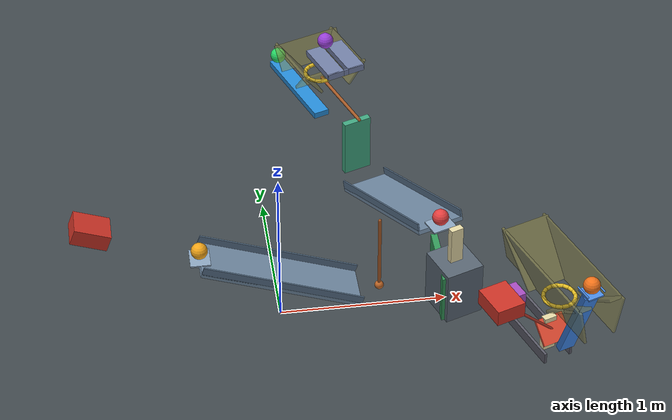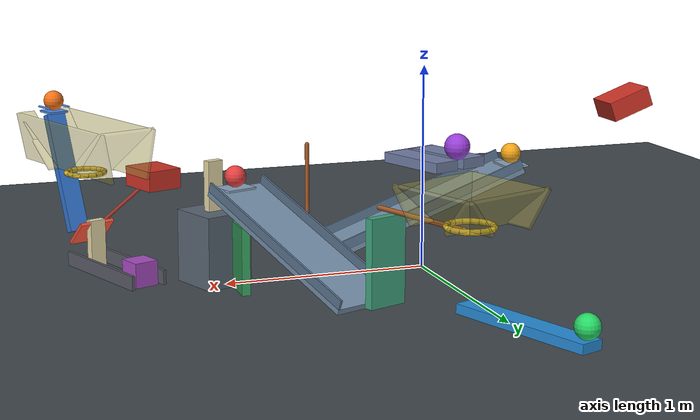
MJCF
<mujoco model="spring_started_chain">
  <compiler angle="degree" autolimits="true" inertiafromgeom="true"/>
  <option timestep="0.002" gravity="0 0 -9.81" integrator="implicitfast" solver="Newton" iterations="100" cone="elliptic" impratio="3" o_solref="0.006 0.6901" o_solimp="0.95 0.99 0.001" o_friction="0.68 0.68 0.005 0.002 0.002">
    <flag override="enable"/>
  </option>
  <size njmax="3000" nconmax="1000"/>
  <visual>
    <global azimuth="135" elevation="-25"/>
    <map znear="0.01" zfar="30"/>
  </visual>

  <!-- Complete scene; the full 20-second cascade has not been simulation-validated. -->
  <!-- Explicit powered assistance supplements cart1's spring. Assistance amplifies contact-induced displacement. -->
  <!-- Contact damping ratio 0.6901 approximates restitution 0.05; MuJoCo has no direct restitution coefficient. -->
  <!-- Sliding friction is 0.68. Torsional and rolling resistance help fallen balls settle. -->
  <!-- All initial generalized velocities are zero. Unspecified keyframe qpos uses the model's initial poses. -->

  <worldbody>
    <light name="key_light" pos="-2 -3 5" dir="0.3 0.4 -1" diffuse="0.8 0.8 0.8"/>
    <light name="fill_light" pos="3 3 4" dir="-0.3 -0.3 -1" diffuse="0.5 0.5 0.5"/>
    <camera name="overview" pos="5 -6 4.5" xyaxes="0.768 0.640 0 -0.288 0.346 0.893"/>
    <geom name="floor" type="plane" pos="0 0 0" size="5 5 0.1" condim="6" friction="0.68 0.005 0.002" rgba="0.25 0.28 0.30 1"/>

    <!-- The spring compression is springref minus initial q: 0.20 m. -->
    <!-- Cart1's front face first reaches ball1 after 0.50 m of axial travel. -->
    <body name="cart1" pos="-1.090043 0 0.767754" quat="0.984807753 0 0.173648178 0">
      <joint name="cart1_slide" type="slide" axis="1 0 0" range="0 0.515" damping="0.20" stiffness="18" springref="0.20" solreflimit="0.006 1" solimplimit="0.99 0.999 0.001"/>
      <geom name="cart1_box" type="box" size="0.11 0.09 0.05" mass="0.50" condim="6" friction="0.68 0.005 0.002" rgba="0.80 0.20 0.15 1"/>
    </body>

    <body name="ball1" pos="-0.469846 0 0.542020">
      <freejoint name="ball1_free"/>
      <geom name="ball1_sphere" type="sphere" size="0.05" mass="0.20" condim="6" friction="0.68 0.005 0.002" rgba="0.95 0.65 0.10 1"/>
    </body>

    <!-- Ramp1's surface is 1.00 by 0.30 m, inclined 20 degrees, with its low end at z=0.15. -->
    <!-- A horizontal high-end pad prevents ball1 from leaving before cart1 arrives. -->
    <body name="ramp1" pos="0 0 0.321010" quat="0.984807753 0 0.173648178 0">
      <geom name="ramp1_surface" type="box" pos="0 0 -0.0125" size="0.50 0.15 0.0125" condim="6" friction="0.68 0.005 0.002" rgba="0.45 0.55 0.65 1"/>
      <geom name="ramp1_start_pad" type="box" pos="-0.498290 0 -0.004698" quat="0.984807753 0 -0.173648178 0" size="0.06 0.075 0.005" condim="6" friction="0.68 0.005 0.002" rgba="0.55 0.65 0.75 1"/>
      <geom name="ramp1_rail_left" type="box" pos="0 0.145 0.02" size="0.50 0.005 0.025" condim="6" friction="0.68 0.005 0.002" rgba="0.35 0.45 0.55 1"/>
      <geom name="ramp1_rail_right" type="box" pos="0 -0.145 0.02" size="0.50 0.005 0.025" condim="6" friction="0.68 0.005 0.002" rgba="0.35 0.45 0.55 1"/>
    </body>

    <body name="pendulum1" pos="0.594846 0 0.65">
      <joint name="pendulum1_hinge" type="hinge" axis="0 -1 0" range="0 40" damping="0.04" solreflimit="0.006 1" solimplimit="0.99 0.999 0.001"/>
      <geom name="pendulum1_rod" type="capsule" fromto="0 0 0 0 0 -0.50" size="0.01" mass="0.32" condim="6" friction="0.68 0.005 0.002" rgba="0.65 0.35 0.15 1"/>
      <geom name="pendulum1_bob" type="sphere" pos="0 0 -0.50" size="0.027" mass="0.03" condim="6" friction="0.68 0.005 0.002" rgba="0.75 0.40 0.15 1"/>
    </body>

    <body name="door1" pos="0.961240 -0.20 0.16">
      <joint name="door1_hinge" type="hinge" axis="0 0 -1" range="0 70" damping="0.04" solreflimit="0.006 1" solimplimit="0.99 0.999 0.001"/>
      <geom name="door1_panel" type="box" pos="0 0.21 0" size="0.02 0.21 0.16" mass="0.45" condim="6" friction="0.68 0.005 0.002" rgba="0.20 0.60 0.35 1"/>
    </body>

    <body name="block1" pos="1.383615 -0.132467 0.06" quat="0.819152044 0 0 -0.573576436">
      <freejoint name="block1_free"/>
      <geom name="block1_cube" type="box" size="0.06 0.06 0.06" mass="0.35" condim="6" friction="0.68 0.005 0.002" rgba="0.65 0.30 0.75 1"/>
    </body>

    <body name="block1_guide" pos="1.383615 -0.132467 0" quat="0.819152044 0 0 -0.573576436">
      <geom name="block1_guide_left" type="box" pos="0.22 0.086 0.035" size="0.30 0.008 0.035" condim="6" friction="0.68 0.005 0.002" rgba="0.35 0.35 0.40 1"/>
      <geom name="block1_guide_right" type="box" pos="0.22 -0.086 0.035" size="0.30 0.008 0.035" condim="6" friction="0.68 0.005 0.002" rgba="0.35 0.35 0.40 1"/>
    </body>

    <!-- Initial block-to-domino face clearance is 0.32 m along the guide. -->
    <body name="domino1" pos="1.520423 -0.508344 0.12" quat="0.819152044 0 0 -0.573576436">
      <freejoint name="domino1_free"/>
      <geom name="domino1_box" type="box" size="0.02 0.04 0.12" mass="0.25" condim="6" friction="0.68 0.005 0.002" rgba="0.90 0.85 0.65 1"/>
    </body>

    <!-- Lever1 is center-hinged and initially inclined, placing its left end 0.18 m beyond domino1. -->
    <!-- Beam and cup together have mass 0.50 kg. -->
    <body name="lever1" pos="1.617080 -0.773906 0.431908" quat="0.671010072 -0.328989928 -0.469846310 -0.469846310">
      <joint name="lever1_hinge" type="hinge" axis="0 -1 0" range="0 45" damping="0.04" solreflimit="0.006 1" solimplimit="0.99 0.999 0.001"/>
      <geom name="lever1_beam" type="box" size="0.30 0.05 0.02" mass="0.479" condim="6" friction="0.68 0.005 0.002" rgba="0.20 0.45 0.80 1"/>
      <geom name="lever1_cup_floor" type="box" pos="0.314095 0 0.005130" quat="0.819152044 0 0.573576436 0" size="0.055 0.05 0.005" mass="0.020" condim="6" friction="0.68 0.005 0.002" rgba="0.30 0.55 0.90 1"/>
      <geom name="lever1_cup_rail_left" type="capsule" fromto="0.320487 0.055 0.060666 0.354689 0.055 -0.033304" size="0.005" mass="0.0005" condim="6" friction="0.68 0.005 0.002" rgba="0.30 0.55 0.90 1"/>
      <geom name="lever1_cup_rail_right" type="capsule" fromto="0.320487 -0.055 0.060666 0.354689 -0.055 -0.033304" size="0.005" mass="0.0005" condim="6" friction="0.68 0.005 0.002" rgba="0.30 0.55 0.90 1"/>
    </body>

    <body name="ball2" pos="1.652173 -0.870324 0.783816">
      <freejoint name="ball2_free"/>
      <geom name="ball2_sphere" type="sphere" size="0.05" mass="0.20" condim="6" friction="0.68 0.005 0.002" rgba="0.95 0.45 0.10 1"/>
    </body>

    <!-- Ring1 is horizontal, with 0.16 m inscribed clear diameter, 0.32 m below ball2's initial center. -->
    <!-- Its primitive guide includes a slot through which the lever can move. -->
    <body name="ring1" pos="1.549567 -0.588416 0.463816" quat="0.573576436 0 0 0.819152044">
      <geom name="ring1_segment_00" type="capsule" fromto="0.093802 0 0 0.086664 0.035897 0" size="0.012" condim="6" friction="0.68 0.005 0.002" rgba="0.90 0.75 0.15 1"/>
      <geom name="ring1_segment_01" type="capsule" fromto="0.086664 0.035897 0 0.066330 0.066330 0" size="0.012" condim="6" friction="0.68 0.005 0.002" rgba="0.90 0.75 0.15 1"/>
      <geom name="ring1_segment_02" type="capsule" fromto="0.066330 0.066330 0 0.035897 0.086664 0" size="0.012" condim="6" friction="0.68 0.005 0.002" rgba="0.90 0.75 0.15 1"/>
      <geom name="ring1_segment_03" type="capsule" fromto="0.035897 0.086664 0 0 0.093802 0" size="0.012" condim="6" friction="0.68 0.005 0.002" rgba="0.90 0.75 0.15 1"/>
      <geom name="ring1_segment_04" type="capsule" fromto="0 0.093802 0 -0.035897 0.086664 0" size="0.012" condim="6" friction="0.68 0.005 0.002" rgba="0.90 0.75 0.15 1"/>
      <geom name="ring1_segment_05" type="capsule" fromto="-0.035897 0.086664 0 -0.066330 0.066330 0" size="0.012" condim="6" friction="0.68 0.005 0.002" rgba="0.90 0.75 0.15 1"/>
      <geom name="ring1_segment_06" type="capsule" fromto="-0.066330 0.066330 0 -0.086664 0.035897 0" size="0.012" condim="6" friction="0.68 0.005 0.002" rgba="0.90 0.75 0.15 1"/>
      <geom name="ring1_segment_07" type="capsule" fromto="-0.086664 0.035897 0 -0.093802 0 0" size="0.012" condim="6" friction="0.68 0.005 0.002" rgba="0.90 0.75 0.15 1"/>
      <geom name="ring1_segment_08" type="capsule" fromto="-0.093802 0 0 -0.086664 -0.035897 0" size="0.012" condim="6" friction="0.68 0.005 0.002" rgba="0.90 0.75 0.15 1"/>
      <geom name="ring1_segment_09" type="capsule" fromto="-0.086664 -0.035897 0 -0.066330 -0.066330 0" size="0.012" condim="6" friction="0.68 0.005 0.002" rgba="0.90 0.75 0.15 1"/>
      <geom name="ring1_segment_10" type="capsule" fromto="-0.066330 -0.066330 0 -0.035897 -0.086664 0" size="0.012" condim="6" friction="0.68 0.005 0.002" rgba="0.90 0.75 0.15 1"/>
      <geom name="ring1_segment_11" type="capsule" fromto="-0.035897 -0.086664 0 0 -0.093802 0" size="0.012" condim="6" friction="0.68 0.005 0.002" rgba="0.90 0.75 0.15 1"/>
      <geom name="ring1_segment_12" type="capsule" fromto="0 -0.093802 0 0.035897 -0.086664 0" size="0.012" condim="6" friction="0.68 0.005 0.002" rgba="0.90 0.75 0.15 1"/>
      <geom name="ring1_segment_13" type="capsule" fromto="0.035897 -0.086664 0 0.066330 -0.066330 0" size="0.012" condim="6" friction="0.68 0.005 0.002" rgba="0.90 0.75 0.15 1"/>
      <geom name="ring1_segment_14" type="capsule" fromto="0.066330 -0.066330 0 0.086664 -0.035897 0" size="0.012" condim="6" friction="0.68 0.005 0.002" rgba="0.90 0.75 0.15 1"/>
      <geom name="ring1_segment_15" type="capsule" fromto="0.086664 -0.035897 0 0.093802 0 0" size="0.012" condim="6" friction="0.68 0.005 0.002" rgba="0.90 0.75 0.15 1"/>
      <geom name="ring1_guide_front" type="box" pos="0.2475 0 0.138" euler="0 52.25 0" size="0.008 0.15 0.19282" condim="6" friction="0.68 0.005 0.002" rgba="0.65 0.60 0.25 0.45"/>
      <geom name="ring1_guide_back_lower" type="box" pos="-0.1725 0 0.08" euler="0 -52.25 0" size="0.008 0.15 0.09802" condim="6" friction="0.68 0.005 0.002" rgba="0.65 0.60 0.25 0.45"/>
      <geom name="ring1_guide_back_upper_left" type="box" pos="-0.325 0.10 0.198" euler="0 -52.25 0" size="0.008 0.04 0.09482" condim="6" friction="0.68 0.005 0.002" rgba="0.65 0.60 0.25 0.45"/>
      <geom name="ring1_guide_back_upper_right" type="box" pos="-0.325 -0.10 0.198" euler="0 -52.25 0" size="0.008 0.04 0.09482" condim="6" friction="0.68 0.005 0.002" rgba="0.65 0.60 0.25 0.45"/>
      <geom name="ring1_guide_left" type="box" pos="0 0.1175 0.138" euler="-10.8 0 0" size="0.42 0.007 0.12012" condim="6" friction="0.68 0.005 0.002" rgba="0.65 0.60 0.25 0.45"/>
      <geom name="ring1_guide_right" type="box" pos="0 -0.1175 0.138" euler="10.8 0 0" size="0.42 0.007 0.12012" condim="6" friction="0.68 0.005 0.002" rgba="0.65 0.60 0.25 0.45"/>
    </body>

    <!-- Cart2's rigid inclined paddle converts the falling ball's impact into axial motion. -->
    <!-- Main cart, coupling arm, and paddle together have mass 0.50 kg. -->
    <!-- Nominal ball-center height at paddle contact is ring1 height minus 0.25 m. -->
    <body name="cart2" pos="1.219434 -0.558526 0.425" quat="0.573576436 0 0 0.819152044">
      <joint name="cart2_slide" type="slide" axis="1 0 0" range="0 0.405" damping="0.20" solreflimit="0.006 1" solimplimit="0.99 0.999 0.001"/>
      <geom name="cart2_box" type="box" size="0.11 0.09 0.05" mass="0.470" condim="6" friction="0.68 0.005 0.002" rgba="0.80 0.20 0.15 1"/>
      <geom name="cart2_coupling_arm" type="capsule" fromto="0 0 0 -0.10 -0.30 -0.252197" size="0.008" mass="0.015" condim="6" friction="0.68 0.005 0.002" rgba="0.65 0.20 0.15 1"/>
      <geom name="cart2_catch_paddle" type="box" pos="-0.10 -0.30 -0.252197" quat="0.923879533 0 -0.382683432 0" size="0.08 0.09 0.008" mass="0.015" condim="6" friction="0.68 0.005 0.002" rgba="0.90 0.30 0.20 1"/>
    </body>

    <body name="domino2_support" pos="1.038163 -0.060489 0.175" quat="0.573576436 0 0 0.819152044">
      <geom name="domino2_support_plinth" type="box" size="0.13 0.12 0.175" condim="6" friction="0.68 0.005 0.002" rgba="0.35 0.40 0.45 1"/>
    </body>

    <!-- Cart2 reaches domino2 after 0.40 m of travel. -->
    <body name="domino2" pos="1.038163 -0.060489 0.47" quat="0.573576436 0 0 0.819152044">
      <freejoint name="domino2_free"/>
      <geom name="domino2_box" type="box" size="0.02 0.04 0.12" mass="0.25" condim="6" friction="0.68 0.005 0.002" rgba="0.90 0.85 0.65 1"/>
    </body>

    <body name="ball3" pos="0.976600 0.108656 0.542020">
      <freejoint name="ball3_free"/>
      <geom name="ball3_sphere" type="sphere" size="0.05" mass="0.20" condim="6" friction="0.68 0.005 0.002" rgba="0.90 0.25 0.25 1"/>
    </body>

    <body name="ramp2" pos="0.815903 0.550167 0.321010" quat="0.564862521 -0.142244260 0.099600503 0.806707284">
      <geom name="ramp2_surface" type="box" pos="0 0 -0.0125" size="0.50 0.15 0.0125" condim="6" friction="0.68 0.005 0.002" rgba="0.45 0.55 0.65 1"/>
      <geom name="ramp2_start_pad" type="box" pos="-0.498290 0 -0.004698" quat="0.984807753 0 -0.173648178 0" size="0.06 0.075 0.005" condim="6" friction="0.68 0.005 0.002" rgba="0.55 0.65 0.75 1"/>
      <geom name="ramp2_rail_left" type="box" pos="0 0.145 0.02" size="0.50 0.005 0.025" condim="6" friction="0.68 0.005 0.002" rgba="0.35 0.45 0.55 1"/>
      <geom name="ramp2_rail_right" type="box" pos="0 -0.145 0.02" size="0.50 0.005 0.025" condim="6" friction="0.68 0.005 0.002" rgba="0.35 0.45 0.55 1"/>
    </body>

    <body name="flap1" pos="0.614164 1.104441 0.55" quat="0.573576436 0 0 0.819152044">
      <joint name="flap1_hinge" type="hinge" axis="0 -1 0" range="0 60" damping="0.04" solreflimit="0.006 1" solimplimit="0.99 0.999 0.001"/>
      <geom name="flap1_panel" type="box" pos="0 0 -0.19" size="0.02 0.09 0.19" mass="0.28" condim="6" friction="0.68 0.005 0.002" rgba="0.25 0.65 0.50 1"/>
    </body>

    <!-- Pendulum2 begins horizontal; its actuator exactly balances its initial gravitational torque. -->
    <body name="pendulum2" pos="0.627844 1.066854 0.577321" quat="0.573576436 0 0 0.819152044">
      <joint name="pendulum2_hinge" type="hinge" axis="0 -1 0" range="0 38" damping="0.04" solreflimit="0.006 1" solimplimit="0.99 0.999 0.001"/>
      <geom name="pendulum2_rod" type="capsule" fromto="0 0 0 0.50 0 0" size="0.0105" mass="0.32" condim="6" friction="0.68 0.005 0.002" rgba="0.65 0.35 0.15 1"/>
      <geom name="pendulum2_bob" type="sphere" pos="0.50 0 0" size="0.012" mass="0.03" condim="6" friction="0.68 0.005 0.002" rgba="0.75 0.40 0.15 1"/>
    </body>

    <!-- The shelf has a narrow central slot for pendulum2. Ball4 bridges its two support strips. -->
    <!-- Overall shelf dimensions remain 0.30 by 0.25 by 0.04 m, with its top at z=0.85. -->
    <body name="shelf1" pos="0.517030 1.371314 0.83" quat="0.573576436 0 0 0.819152044">
      <geom name="shelf1_left_strip" type="box" pos="0 0.07 0" size="0.15 0.055 0.02" condim="6" friction="0.68 0.005 0.002" rgba="0.45 0.50 0.65 1"/>
      <geom name="shelf1_right_strip" type="box" pos="0 -0.07 0" size="0.15 0.055 0.02" condim="6" friction="0.68 0.005 0.002" rgba="0.45 0.50 0.65 1"/>
      <geom name="shelf1_back_bridge" type="box" pos="-0.145 0 0" size="0.005 0.125 0.02" condim="6" friction="0.68 0.005 0.002" rgba="0.45 0.50 0.65 1"/>
    </body>

    <body name="ball4" pos="0.472567 1.493474 0.897697">
      <freejoint name="ball4_free"/>
      <geom name="ball4_sphere" type="sphere" size="0.05" mass="0.20" condim="6" friction="0.68 0.005 0.002" rgba="0.60 0.25 0.85 1"/>
    </body>

    <!-- Ring2 is 0.30 m below ball4's initial center. -->
    <body name="ring2" pos="0.445206 1.568649 0.597697" quat="0.573576436 0 0 0.819152044">
      <geom name="ring2_segment_00" type="capsule" fromto="0.093802 0 0 0.086664 0.035897 0" size="0.012" condim="6" friction="0.68 0.005 0.002" rgba="0.90 0.75 0.15 1"/>
      <geom name="ring2_segment_01" type="capsule" fromto="0.086664 0.035897 0 0.066330 0.066330 0" size="0.012" condim="6" friction="0.68 0.005 0.002" rgba="0.90 0.75 0.15 1"/>
      <geom name="ring2_segment_02" type="capsule" fromto="0.066330 0.066330 0 0.035897 0.086664 0" size="0.012" condim="6" friction="0.68 0.005 0.002" rgba="0.90 0.75 0.15 1"/>
      <geom name="ring2_segment_03" type="capsule" fromto="0.035897 0.086664 0 0 0.093802 0" size="0.012" condim="6" friction="0.68 0.005 0.002" rgba="0.90 0.75 0.15 1"/>
      <geom name="ring2_segment_04" type="capsule" fromto="0 0.093802 0 -0.035897 0.086664 0" size="0.012" condim="6" friction="0.68 0.005 0.002" rgba="0.90 0.75 0.15 1"/>
      <geom name="ring2_segment_05" type="capsule" fromto="-0.035897 0.086664 0 -0.066330 0.066330 0" size="0.012" condim="6" friction="0.68 0.005 0.002" rgba="0.90 0.75 0.15 1"/>
      <geom name="ring2_segment_06" type="capsule" fromto="-0.066330 0.066330 0 -0.086664 0.035897 0" size="0.012" condim="6" friction="0.68 0.005 0.002" rgba="0.90 0.75 0.15 1"/>
      <geom name="ring2_segment_07" type="capsule" fromto="-0.086664 0.035897 0 -0.093802 0 0" size="0.012" condim="6" friction="0.68 0.005 0.002" rgba="0.90 0.75 0.15 1"/>
      <geom name="ring2_segment_08" type="capsule" fromto="-0.093802 0 0 -0.086664 -0.035897 0" size="0.012" condim="6" friction="0.68 0.005 0.002" rgba="0.90 0.75 0.15 1"/>
      <geom name="ring2_segment_09" type="capsule" fromto="-0.086664 -0.035897 0 -0.066330 -0.066330 0" size="0.012" condim="6" friction="0.68 0.005 0.002" rgba="0.90 0.75 0.15 1"/>
      <geom name="ring2_segment_10" type="capsule" fromto="-0.066330 -0.066330 0 -0.035897 -0.086664 0" size="0.012" condim="6" friction="0.68 0.005 0.002" rgba="0.90 0.75 0.15 1"/>
      <geom name="ring2_segment_11" type="capsule" fromto="-0.035897 -0.086664 0 0 -0.093802 0" size="0.012" condim="6" friction="0.68 0.005 0.002" rgba="0.90 0.75 0.15 1"/>
      <geom name="ring2_segment_12" type="capsule" fromto="0 -0.093802 0 0.035897 -0.086664 0" size="0.012" condim="6" friction="0.68 0.005 0.002" rgba="0.90 0.75 0.15 1"/>
      <geom name="ring2_segment_13" type="capsule" fromto="0.035897 -0.086664 0 0.066330 -0.066330 0" size="0.012" condim="6" friction="0.68 0.005 0.002" rgba="0.90 0.75 0.15 1"/>
      <geom name="ring2_segment_14" type="capsule" fromto="0.066330 -0.066330 0 0.086664 -0.035897 0" size="0.012" condim="6" friction="0.68 0.005 0.002" rgba="0.90 0.75 0.15 1"/>
      <geom name="ring2_segment_15" type="capsule" fromto="0.086664 -0.035897 0 0.093802 0 0" size="0.012" condim="6" friction="0.68 0.005 0.002" rgba="0.90 0.75 0.15 1"/>
      <geom name="ring2_guide_front" type="box" pos="0.1475 0 0.0875" euler="0 37.875 0" size="0.008 0.22 0.08552" condim="6" friction="0.68 0.005 0.002" rgba="0.65 0.60 0.25 0.45"/>
      <geom name="ring2_guide_back" type="box" pos="-0.1475 0 0.0875" euler="0 -37.875 0" size="0.008 0.22 0.08552" condim="6" friction="0.68 0.005 0.002" rgba="0.65 0.60 0.25 0.45"/>
      <geom name="ring2_guide_left" type="box" pos="0 0.1475 0.0875" euler="-37.875 0 0" size="0.22 0.008 0.08552" condim="6" friction="0.68 0.005 0.002" rgba="0.65 0.60 0.25 0.45"/>
      <geom name="ring2_guide_right" type="box" pos="0 -0.1475 0.0875" euler="37.875 0 0" size="0.22 0.008 0.08552" condim="6" friction="0.68 0.005 0.002" rgba="0.65 0.60 0.25 0.45"/>
    </body>

    <!-- Ball4's nominal center at first contact is another 0.25 m below ring2. -->
    <body name="seesaw1" pos="0.340890 1.855256 0.277697" quat="0.573576436 0 0 0.819152044">
      <joint name="seesaw1_hinge" type="hinge" axis="0 -1 0" range="0 42" damping="0.04" solreflimit="0.006 1" solimplimit="0.99 0.999 0.001"/>
      <geom name="seesaw1_beam" type="box" size="0.325 0.05 0.02" mass="0.55" condim="6" friction="0.68 0.005 0.002" rgba="0.15 0.55 0.85 1"/>
    </body>

    <body name="ball5" pos="0.238284 2.137163 0.347697">
      <freejoint name="ball5_free"/>
      <geom name="ball5_sphere" type="sphere" size="0.05" mass="0.20" condim="6" friction="0.68 0.005 0.002" rgba="0.15 0.85 0.40 1"/>
    </body>
  </worldbody>

  <!-- These scene-internal actuators have fixed zero controls. -->
  <!-- Affine position bias supplies positive displacement feedback after a physical trigger. -->
  <!-- Pendulum2 additionally receives 0.93195 N m to balance its initial horizontal gravitational torque. -->
  <actuator>
    <general name="pendulum1_assist" joint="pendulum1_hinge" gainprm="0" biastype="affine" biasprm="0 1.5 0"/>
    <general name="door1_assist" joint="door1_hinge" gainprm="0" biastype="affine" biasprm="0 6 0"/>
    <general name="lever1_assist" joint="lever1_hinge" gainprm="0" biastype="affine" biasprm="0 3 0"/>
    <general name="cart2_assist" joint="cart2_slide" gainprm="0" biastype="affine" biasprm="0 5 0"/>
    <general name="flap1_assist" joint="flap1_hinge" gainprm="0" biastype="affine" biasprm="0 2 0"/>
    <general name="pendulum2_assist" joint="pendulum2_hinge" gainprm="0" biastype="affine" biasprm="0.93195 0.6 0"/>
    <general name="seesaw1_assist" joint="seesaw1_hinge" gainprm="0" biastype="affine" biasprm="0 2 0"/>
  </actuator>

  <keyframe>
    <key name="start" time="0" ctrl="0 0 0 0 0 0 0"/>
  </keyframe>
</mujoco>
